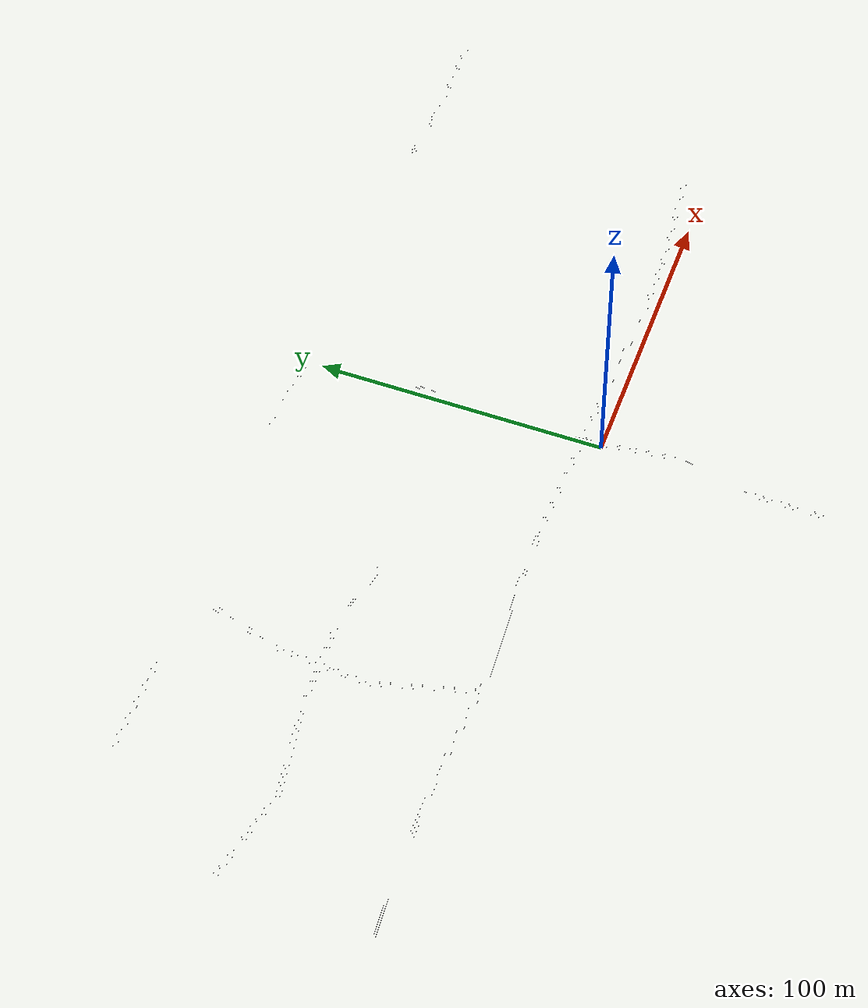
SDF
<?xml version="1.0"?>
<sdf version="1.9">
  <model name="aero_sense_power_lines">
    <static>true</static>
    <link name="link">
      <visual name="span_0_-0.8">
        <pose>-6.349 -66.424 8.640 0 1.57080 1.55957</pose>
        <cast_shadows>false</cast_shadows>
        <geometry><cylinder><radius>0.006</radius><length>29.654</length></cylinder></geometry>
        <material><ambient>0.08 0.08 0.09 1</ambient><diffuse>0.08 0.08 0.09 1</diffuse></material>
      </visual>
      <visual name="span_0_+0.0">
        <pose>-7.149 -66.415 9.100 0 1.57080 1.55957</pose>
        <cast_shadows>false</cast_shadows>
        <geometry><cylinder><radius>0.006</radius><length>29.654</length></cylinder></geometry>
        <material><ambient>0.08 0.08 0.09 1</ambient><diffuse>0.08 0.08 0.09 1</diffuse></material>
      </visual>
      <visual name="span_0_+0.8">
        <pose>-7.949 -66.406 8.640 0 1.57080 1.55957</pose>
        <cast_shadows>false</cast_shadows>
        <geometry><cylinder><radius>0.006</radius><length>29.654</length></cylinder></geometry>
        <material><ambient>0.08 0.08 0.09 1</ambient><diffuse>0.08 0.08 0.09 1</diffuse></material>
      </visual>
      <visual name="span_1_-0.8">
        <pose>-3.471 -38.891 8.640 0 1.57080 1.36176</pose>
        <cast_shadows>false</cast_shadows>
        <geometry><cylinder><radius>0.006</radius><length>26.300</length></cylinder></geometry>
        <material><ambient>0.08 0.08 0.09 1</ambient><diffuse>0.08 0.08 0.09 1</diffuse></material>
      </visual>
      <visual name="span_1_+0.0">
        <pose>-4.254 -38.725 9.100 0 1.57080 1.36176</pose>
        <cast_shadows>false</cast_shadows>
        <geometry><cylinder><radius>0.006</radius><length>26.300</length></cylinder></geometry>
        <material><ambient>0.08 0.08 0.09 1</ambient><diffuse>0.08 0.08 0.09 1</diffuse></material>
      </visual>
      <visual name="span_1_+0.8">
        <pose>-5.036 -38.559 8.640 0 1.57080 1.36176</pose>
        <cast_shadows>false</cast_shadows>
        <geometry><cylinder><radius>0.006</radius><length>26.300</length></cylinder></geometry>
        <material><ambient>0.08 0.08 0.09 1</ambient><diffuse>0.08 0.08 0.09 1</diffuse></material>
      </visual>
      <visual name="span_2_-0.8">
        <pose>-2.429 -11.336 8.640 0 1.57080 1.68797</pose>
        <cast_shadows>false</cast_shadows>
        <geometry><cylinder><radius>0.006</radius><length>29.063</length></cylinder></geometry>
        <material><ambient>0.08 0.08 0.09 1</ambient><diffuse>0.08 0.08 0.09 1</diffuse></material>
      </visual>
      <visual name="span_2_+0.0">
        <pose>-3.224 -11.429 9.100 0 1.57080 1.68797</pose>
        <cast_shadows>false</cast_shadows>
        <geometry><cylinder><radius>0.006</radius><length>29.063</length></cylinder></geometry>
        <material><ambient>0.08 0.08 0.09 1</ambient><diffuse>0.08 0.08 0.09 1</diffuse></material>
      </visual>
      <visual name="span_2_+0.8">
        <pose>-4.018 -11.523 8.640 0 1.57080 1.68797</pose>
        <cast_shadows>false</cast_shadows>
        <geometry><cylinder><radius>0.006</radius><length>29.063</length></cylinder></geometry>
        <material><ambient>0.08 0.08 0.09 1</ambient><diffuse>0.08 0.08 0.09 1</diffuse></material>
      </visual>
      <visual name="span_3_-0.8">
        <pose>-5.804 19.213 8.640 0 1.57080 1.67442</pose>
        <cast_shadows>false</cast_shadows>
        <geometry><cylinder><radius>0.006</radius><length>32.429</length></cylinder></geometry>
        <material><ambient>0.08 0.08 0.09 1</ambient><diffuse>0.08 0.08 0.09 1</diffuse></material>
      </visual>
      <visual name="span_3_+0.0">
        <pose>-6.600 19.130 9.100 0 1.57080 1.67442</pose>
        <cast_shadows>false</cast_shadows>
        <geometry><cylinder><radius>0.006</radius><length>32.429</length></cylinder></geometry>
        <material><ambient>0.08 0.08 0.09 1</ambient><diffuse>0.08 0.08 0.09 1</diffuse></material>
      </visual>
      <visual name="span_3_+0.8">
        <pose>-7.395 19.047 8.640 0 1.57080 1.67442</pose>
        <cast_shadows>false</cast_shadows>
        <geometry><cylinder><radius>0.006</radius><length>32.429</length></cylinder></geometry>
        <material><ambient>0.08 0.08 0.09 1</ambient><diffuse>0.08 0.08 0.09 1</diffuse></material>
      </visual>
      <visual name="span_4_-0.8">
        <pose>-3.960 52.745 8.640 0 1.57080 1.37322</pose>
        <cast_shadows>false</cast_shadows>
        <geometry><cylinder><radius>0.006</radius><length>35.989</length></cylinder></geometry>
        <material><ambient>0.08 0.08 0.09 1</ambient><diffuse>0.08 0.08 0.09 1</diffuse></material>
      </visual>
      <visual name="span_4_+0.0">
        <pose>-4.744 52.902 9.100 0 1.57080 1.37322</pose>
        <cast_shadows>false</cast_shadows>
        <geometry><cylinder><radius>0.006</radius><length>35.989</length></cylinder></geometry>
        <material><ambient>0.08 0.08 0.09 1</ambient><diffuse>0.08 0.08 0.09 1</diffuse></material>
      </visual>
      <visual name="span_4_+0.8">
        <pose>-5.529 53.059 8.640 0 1.57080 1.37322</pose>
        <cast_shadows>false</cast_shadows>
        <geometry><cylinder><radius>0.006</radius><length>35.989</length></cylinder></geometry>
        <material><ambient>0.08 0.08 0.09 1</ambient><diffuse>0.08 0.08 0.09 1</diffuse></material>
      </visual>
      <visual name="span_5_-0.8">
        <pose>-178.033 5.471 8.640 0 1.57080 0.06730</pose>
        <cast_shadows>false</cast_shadows>
        <geometry><cylinder><radius>0.006</radius><length>27.052</length></cylinder></geometry>
        <material><ambient>0.08 0.08 0.09 1</ambient><diffuse>0.08 0.08 0.09 1</diffuse></material>
      </visual>
      <visual name="span_5_+0.0">
        <pose>-178.087 6.269 9.100 0 1.57080 0.06730</pose>
        <cast_shadows>false</cast_shadows>
        <geometry><cylinder><radius>0.006</radius><length>27.052</length></cylinder></geometry>
        <material><ambient>0.08 0.08 0.09 1</ambient><diffuse>0.08 0.08 0.09 1</diffuse></material>
      </visual>
      <visual name="span_5_+0.8">
        <pose>-178.141 7.067 8.640 0 1.57080 0.06730</pose>
        <cast_shadows>false</cast_shadows>
        <geometry><cylinder><radius>0.006</radius><length>27.052</length></cylinder></geometry>
        <material><ambient>0.08 0.08 0.09 1</ambient><diffuse>0.08 0.08 0.09 1</diffuse></material>
      </visual>
      <visual name="span_6_-0.8">
        <pose>-149.505 6.240 8.640 0 1.57080 -0.00922</pose>
        <cast_shadows>false</cast_shadows>
        <geometry><cylinder><radius>0.006</radius><length>30.189</length></cylinder></geometry>
        <material><ambient>0.08 0.08 0.09 1</ambient><diffuse>0.08 0.08 0.09 1</diffuse></material>
      </visual>
      <visual name="span_6_+0.0">
        <pose>-149.498 7.040 9.100 0 1.57080 -0.00922</pose>
        <cast_shadows>false</cast_shadows>
        <geometry><cylinder><radius>0.006</radius><length>30.189</length></cylinder></geometry>
        <material><ambient>0.08 0.08 0.09 1</ambient><diffuse>0.08 0.08 0.09 1</diffuse></material>
      </visual>
      <visual name="span_6_+0.8">
        <pose>-149.490 7.839 8.640 0 1.57080 -0.00922</pose>
        <cast_shadows>false</cast_shadows>
        <geometry><cylinder><radius>0.006</radius><length>30.189</length></cylinder></geometry>
        <material><ambient>0.08 0.08 0.09 1</ambient><diffuse>0.08 0.08 0.09 1</diffuse></material>
      </visual>
      <visual name="span_7_-0.8">
        <pose>-117.237 4.760 8.640 0 1.57080 -0.07779</pose>
        <cast_shadows>false</cast_shadows>
        <geometry><cylinder><radius>0.006</radius><length>34.562</length></cylinder></geometry>
        <material><ambient>0.08 0.08 0.09 1</ambient><diffuse>0.08 0.08 0.09 1</diffuse></material>
      </visual>
      <visual name="span_7_+0.0">
        <pose>-117.175 5.557 9.100 0 1.57080 -0.07779</pose>
        <cast_shadows>false</cast_shadows>
        <geometry><cylinder><radius>0.006</radius><length>34.562</length></cylinder></geometry>
        <material><ambient>0.08 0.08 0.09 1</ambient><diffuse>0.08 0.08 0.09 1</diffuse></material>
      </visual>
      <visual name="span_7_+0.8">
        <pose>-117.113 6.355 8.640 0 1.57080 -0.07779</pose>
        <cast_shadows>false</cast_shadows>
        <geometry><cylinder><radius>0.006</radius><length>34.562</length></cylinder></geometry>
        <material><ambient>0.08 0.08 0.09 1</ambient><diffuse>0.08 0.08 0.09 1</diffuse></material>
      </visual>
      <visual name="span_8_-0.8">
        <pose>-84.462 4.369 8.640 0 1.57080 0.06167</pose>
        <cast_shadows>false</cast_shadows>
        <geometry><cylinder><radius>0.006</radius><length>30.929</length></cylinder></geometry>
        <material><ambient>0.08 0.08 0.09 1</ambient><diffuse>0.08 0.08 0.09 1</diffuse></material>
      </visual>
      <visual name="span_8_+0.0">
        <pose>-84.511 5.168 9.100 0 1.57080 0.06167</pose>
        <cast_shadows>false</cast_shadows>
        <geometry><cylinder><radius>0.006</radius><length>30.929</length></cylinder></geometry>
        <material><ambient>0.08 0.08 0.09 1</ambient><diffuse>0.08 0.08 0.09 1</diffuse></material>
      </visual>
      <visual name="span_8_+0.8">
        <pose>-84.560 5.966 8.640 0 1.57080 0.06167</pose>
        <cast_shadows>false</cast_shadows>
        <geometry><cylinder><radius>0.006</radius><length>30.929</length></cylinder></geometry>
        <material><ambient>0.08 0.08 0.09 1</ambient><diffuse>0.08 0.08 0.09 1</diffuse></material>
      </visual>
      <visual name="span_9_-0.8">
        <pose>-54.653 5.523 8.640 0 1.57080 0.01406</pose>
        <cast_shadows>false</cast_shadows>
        <geometry><cylinder><radius>0.006</radius><length>28.826</length></cylinder></geometry>
        <material><ambient>0.08 0.08 0.09 1</ambient><diffuse>0.08 0.08 0.09 1</diffuse></material>
      </visual>
      <visual name="span_9_+0.0">
        <pose>-54.665 6.323 9.100 0 1.57080 0.01406</pose>
        <cast_shadows>false</cast_shadows>
        <geometry><cylinder><radius>0.006</radius><length>28.826</length></cylinder></geometry>
        <material><ambient>0.08 0.08 0.09 1</ambient><diffuse>0.08 0.08 0.09 1</diffuse></material>
      </visual>
      <visual name="span_9_+0.8">
        <pose>-54.676 7.123 8.640 0 1.57080 0.01406</pose>
        <cast_shadows>false</cast_shadows>
        <geometry><cylinder><radius>0.006</radius><length>28.826</length></cylinder></geometry>
        <material><ambient>0.08 0.08 0.09 1</ambient><diffuse>0.08 0.08 0.09 1</diffuse></material>
      </visual>
      <visual name="span_10_-0.8">
        <pose>-26.756 5.146 8.640 0 1.57080 -0.04291</pose>
        <cast_shadows>false</cast_shadows>
        <geometry><cylinder><radius>0.006</radius><length>27.089</length></cylinder></geometry>
        <material><ambient>0.08 0.08 0.09 1</ambient><diffuse>0.08 0.08 0.09 1</diffuse></material>
      </visual>
      <visual name="span_10_+0.0">
        <pose>-26.721 5.945 9.100 0 1.57080 -0.04291</pose>
        <cast_shadows>false</cast_shadows>
        <geometry><cylinder><radius>0.006</radius><length>27.089</length></cylinder></geometry>
        <material><ambient>0.08 0.08 0.09 1</ambient><diffuse>0.08 0.08 0.09 1</diffuse></material>
      </visual>
      <visual name="span_10_+0.8">
        <pose>-26.687 6.744 8.640 0 1.57080 -0.04291</pose>
        <cast_shadows>false</cast_shadows>
        <geometry><cylinder><radius>0.006</radius><length>27.089</length></cylinder></geometry>
        <material><ambient>0.08 0.08 0.09 1</ambient><diffuse>0.08 0.08 0.09 1</diffuse></material>
      </visual>
      <visual name="span_11_-0.8">
        <pose>2.044 3.943 8.640 0 1.57080 -0.04069</pose>
        <cast_shadows>false</cast_shadows>
        <geometry><cylinder><radius>0.006</radius><length>30.558</length></cylinder></geometry>
        <material><ambient>0.08 0.08 0.09 1</ambient><diffuse>0.08 0.08 0.09 1</diffuse></material>
      </visual>
      <visual name="span_11_+0.0">
        <pose>2.077 4.742 9.100 0 1.57080 -0.04069</pose>
        <cast_shadows>false</cast_shadows>
        <geometry><cylinder><radius>0.006</radius><length>30.558</length></cylinder></geometry>
        <material><ambient>0.08 0.08 0.09 1</ambient><diffuse>0.08 0.08 0.09 1</diffuse></material>
      </visual>
      <visual name="span_11_+0.8">
        <pose>2.109 5.542 8.640 0 1.57080 -0.04069</pose>
        <cast_shadows>false</cast_shadows>
        <geometry><cylinder><radius>0.006</radius><length>30.558</length></cylinder></geometry>
        <material><ambient>0.08 0.08 0.09 1</ambient><diffuse>0.08 0.08 0.09 1</diffuse></material>
      </visual>
      <visual name="span_12_-0.8">
        <pose>34.699 2.375 8.640 0 1.57080 -0.05439</pose>
        <cast_shadows>false</cast_shadows>
        <geometry><cylinder><radius>0.006</radius><length>34.850</length></cylinder></geometry>
        <material><ambient>0.08 0.08 0.09 1</ambient><diffuse>0.08 0.08 0.09 1</diffuse></material>
      </visual>
      <visual name="span_12_+0.0">
        <pose>34.742 3.174 9.100 0 1.57080 -0.05439</pose>
        <cast_shadows>false</cast_shadows>
        <geometry><cylinder><radius>0.006</radius><length>34.850</length></cylinder></geometry>
        <material><ambient>0.08 0.08 0.09 1</ambient><diffuse>0.08 0.08 0.09 1</diffuse></material>
      </visual>
      <visual name="span_12_+0.8">
        <pose>34.786 3.973 8.640 0 1.57080 -0.05439</pose>
        <cast_shadows>false</cast_shadows>
        <geometry><cylinder><radius>0.006</radius><length>34.850</length></cylinder></geometry>
        <material><ambient>0.08 0.08 0.09 1</ambient><diffuse>0.08 0.08 0.09 1</diffuse></material>
      </visual>
      <visual name="span_13_-0.8">
        <pose>65.654 1.815 8.653 0 1.56986 0.02874</pose>
        <cast_shadows>false</cast_shadows>
        <geometry><cylinder><radius>0.006</radius><length>26.989</length></cylinder></geometry>
        <material><ambient>0.08 0.08 0.09 1</ambient><diffuse>0.08 0.08 0.09 1</diffuse></material>
      </visual>
      <visual name="span_13_+0.0">
        <pose>65.631 2.614 9.113 0 1.56986 0.02874</pose>
        <cast_shadows>false</cast_shadows>
        <geometry><cylinder><radius>0.006</radius><length>26.989</length></cylinder></geometry>
        <material><ambient>0.08 0.08 0.09 1</ambient><diffuse>0.08 0.08 0.09 1</diffuse></material>
      </visual>
      <visual name="span_13_+0.8">
        <pose>65.608 3.414 8.653 0 1.56986 0.02874</pose>
        <cast_shadows>false</cast_shadows>
        <geometry><cylinder><radius>0.006</radius><length>26.989</length></cylinder></geometry>
        <material><ambient>0.08 0.08 0.09 1</ambient><diffuse>0.08 0.08 0.09 1</diffuse></material>
      </visual>
      <visual name="span_14_-0.8">
        <pose>96.064 3.884 8.835 0 1.56081 0.09915</pose>
        <cast_shadows>false</cast_shadows>
        <geometry><cylinder><radius>0.006</radius><length>33.898</length></cylinder></geometry>
        <material><ambient>0.08 0.08 0.09 1</ambient><diffuse>0.08 0.08 0.09 1</diffuse></material>
      </visual>
      <visual name="span_14_+0.0">
        <pose>95.985 4.680 9.295 0 1.56081 0.09915</pose>
        <cast_shadows>false</cast_shadows>
        <geometry><cylinder><radius>0.006</radius><length>33.898</length></cylinder></geometry>
        <material><ambient>0.08 0.08 0.09 1</ambient><diffuse>0.08 0.08 0.09 1</diffuse></material>
      </visual>
      <visual name="span_14_+0.8">
        <pose>95.906 5.476 8.835 0 1.56081 0.09915</pose>
        <cast_shadows>false</cast_shadows>
        <geometry><cylinder><radius>0.006</radius><length>33.898</length></cylinder></geometry>
        <material><ambient>0.08 0.08 0.09 1</ambient><diffuse>0.08 0.08 0.09 1</diffuse></material>
      </visual>
      <visual name="span_15_-0.8">
        <pose>-145.088 101.486 8.640 0 1.57080 -0.01320</pose>
        <cast_shadows>false</cast_shadows>
        <geometry><cylinder><radius>0.006</radius><length>31.713</length></cylinder></geometry>
        <material><ambient>0.08 0.08 0.09 1</ambient><diffuse>0.08 0.08 0.09 1</diffuse></material>
      </visual>
      <visual name="span_15_+0.0">
        <pose>-145.077 102.286 9.100 0 1.57080 -0.01320</pose>
        <cast_shadows>false</cast_shadows>
        <geometry><cylinder><radius>0.006</radius><length>31.713</length></cylinder></geometry>
        <material><ambient>0.08 0.08 0.09 1</ambient><diffuse>0.08 0.08 0.09 1</diffuse></material>
      </visual>
      <visual name="span_15_+0.8">
        <pose>-145.067 103.086 8.640 0 1.57080 -0.01320</pose>
        <cast_shadows>false</cast_shadows>
        <geometry><cylinder><radius>0.006</radius><length>31.713</length></cylinder></geometry>
        <material><ambient>0.08 0.08 0.09 1</ambient><diffuse>0.08 0.08 0.09 1</diffuse></material>
      </visual>
      <visual name="span_16_-0.8">
        <pose>-20.067 102.645 8.640 0 1.57080 -0.02805</pose>
        <cast_shadows>false</cast_shadows>
        <geometry><cylinder><radius>0.006</radius><length>28.462</length></cylinder></geometry>
        <material><ambient>0.08 0.08 0.09 1</ambient><diffuse>0.08 0.08 0.09 1</diffuse></material>
      </visual>
      <visual name="span_16_+0.0">
        <pose>-20.045 103.445 9.100 0 1.57080 -0.02805</pose>
        <cast_shadows>false</cast_shadows>
        <geometry><cylinder><radius>0.006</radius><length>28.462</length></cylinder></geometry>
        <material><ambient>0.08 0.08 0.09 1</ambient><diffuse>0.08 0.08 0.09 1</diffuse></material>
      </visual>
      <visual name="span_16_+0.8">
        <pose>-20.022 104.244 8.640 0 1.57080 -0.02805</pose>
        <cast_shadows>false</cast_shadows>
        <geometry><cylinder><radius>0.006</radius><length>28.462</length></cylinder></geometry>
        <material><ambient>0.08 0.08 0.09 1</ambient><diffuse>0.08 0.08 0.09 1</diffuse></material>
      </visual>
      <visual name="span_17_-0.8">
        <pose>101.201 101.658 8.640 0 1.57080 -0.05690</pose>
        <cast_shadows>false</cast_shadows>
        <geometry><cylinder><radius>0.006</radius><length>31.562</length></cylinder></geometry>
        <material><ambient>0.08 0.08 0.09 1</ambient><diffuse>0.08 0.08 0.09 1</diffuse></material>
      </visual>
      <visual name="span_17_+0.0">
        <pose>101.247 102.457 9.100 0 1.57080 -0.05690</pose>
        <cast_shadows>false</cast_shadows>
        <geometry><cylinder><radius>0.006</radius><length>31.562</length></cylinder></geometry>
        <material><ambient>0.08 0.08 0.09 1</ambient><diffuse>0.08 0.08 0.09 1</diffuse></material>
      </visual>
      <visual name="span_17_+0.8">
        <pose>101.292 103.255 8.640 0 1.57080 -0.05690</pose>
        <cast_shadows>false</cast_shadows>
        <geometry><cylinder><radius>0.006</radius><length>31.562</length></cylinder></geometry>
        <material><ambient>0.08 0.08 0.09 1</ambient><diffuse>0.08 0.08 0.09 1</diffuse></material>
      </visual>
      <visual name="span_18_-0.8">
        <pose>133.314 101.263 8.640 0 1.57080 0.03088</pose>
        <cast_shadows>false</cast_shadows>
        <geometry><cylinder><radius>0.006</radius><length>32.590</length></cylinder></geometry>
        <material><ambient>0.08 0.08 0.09 1</ambient><diffuse>0.08 0.08 0.09 1</diffuse></material>
      </visual>
      <visual name="span_18_+0.0">
        <pose>133.290 102.062 9.100 0 1.57080 0.03088</pose>
        <cast_shadows>false</cast_shadows>
        <geometry><cylinder><radius>0.006</radius><length>32.590</length></cylinder></geometry>
        <material><ambient>0.08 0.08 0.09 1</ambient><diffuse>0.08 0.08 0.09 1</diffuse></material>
      </visual>
      <visual name="span_18_+0.8">
        <pose>133.265 102.862 8.640 0 1.57080 0.03088</pose>
        <cast_shadows>false</cast_shadows>
        <geometry><cylinder><radius>0.006</radius><length>32.590</length></cylinder></geometry>
        <material><ambient>0.08 0.08 0.09 1</ambient><diffuse>0.08 0.08 0.09 1</diffuse></material>
      </visual>
      <visual name="span_19_-0.8">
        <pose>-174.666 52.374 8.640 0 1.57080 -0.23424</pose>
        <cast_shadows>false</cast_shadows>
        <geometry><cylinder><radius>0.006</radius><length>33.023</length></cylinder></geometry>
        <material><ambient>0.08 0.08 0.09 1</ambient><diffuse>0.08 0.08 0.09 1</diffuse></material>
      </visual>
      <visual name="span_19_+0.0">
        <pose>-174.480 53.152 9.100 0 1.57080 -0.23424</pose>
        <cast_shadows>false</cast_shadows>
        <geometry><cylinder><radius>0.006</radius><length>33.023</length></cylinder></geometry>
        <material><ambient>0.08 0.08 0.09 1</ambient><diffuse>0.08 0.08 0.09 1</diffuse></material>
      </visual>
      <visual name="span_19_+0.8">
        <pose>-174.295 53.930 8.640 0 1.57080 -0.23424</pose>
        <cast_shadows>false</cast_shadows>
        <geometry><cylinder><radius>0.006</radius><length>33.023</length></cylinder></geometry>
        <material><ambient>0.08 0.08 0.09 1</ambient><diffuse>0.08 0.08 0.09 1</diffuse></material>
      </visual>
      <visual name="span_20_-0.8">
        <pose>-143.117 50.855 8.640 0 1.57080 0.15204</pose>
        <cast_shadows>false</cast_shadows>
        <geometry><cylinder><radius>0.006</radius><length>30.716</length></cylinder></geometry>
        <material><ambient>0.08 0.08 0.09 1</ambient><diffuse>0.08 0.08 0.09 1</diffuse></material>
      </visual>
      <visual name="span_20_+0.0">
        <pose>-143.238 51.645 9.100 0 1.57080 0.15204</pose>
        <cast_shadows>false</cast_shadows>
        <geometry><cylinder><radius>0.006</radius><length>30.716</length></cylinder></geometry>
        <material><ambient>0.08 0.08 0.09 1</ambient><diffuse>0.08 0.08 0.09 1</diffuse></material>
      </visual>
      <visual name="span_20_+0.8">
        <pose>-143.360 52.436 8.640 0 1.57080 0.15204</pose>
        <cast_shadows>false</cast_shadows>
        <geometry><cylinder><radius>0.006</radius><length>30.716</length></cylinder></geometry>
        <material><ambient>0.08 0.08 0.09 1</ambient><diffuse>0.08 0.08 0.09 1</diffuse></material>
      </visual>
      <visual name="span_21_-0.8">
        <pose>-113.241 53.649 8.640 0 1.57080 0.03228</pose>
        <cast_shadows>false</cast_shadows>
        <geometry><cylinder><radius>0.006</radius><length>29.597</length></cylinder></geometry>
        <material><ambient>0.08 0.08 0.09 1</ambient><diffuse>0.08 0.08 0.09 1</diffuse></material>
      </visual>
      <visual name="span_21_+0.0">
        <pose>-113.267 54.449 9.100 0 1.57080 0.03228</pose>
        <cast_shadows>false</cast_shadows>
        <geometry><cylinder><radius>0.006</radius><length>29.597</length></cylinder></geometry>
        <material><ambient>0.08 0.08 0.09 1</ambient><diffuse>0.08 0.08 0.09 1</diffuse></material>
      </visual>
      <visual name="span_21_+0.8">
        <pose>-113.293 55.249 8.640 0 1.57080 0.03228</pose>
        <cast_shadows>false</cast_shadows>
        <geometry><cylinder><radius>0.006</radius><length>29.597</length></cylinder></geometry>
        <material><ambient>0.08 0.08 0.09 1</ambient><diffuse>0.08 0.08 0.09 1</diffuse></material>
      </visual>
      <visual name="span_22_-0.8">
        <pose>-85.915 51.508 8.640 0 1.57080 -0.20424</pose>
        <cast_shadows>false</cast_shadows>
        <geometry><cylinder><radius>0.006</radius><length>25.987</length></cylinder></geometry>
        <material><ambient>0.08 0.08 0.09 1</ambient><diffuse>0.08 0.08 0.09 1</diffuse></material>
      </visual>
      <visual name="span_22_+0.0">
        <pose>-85.753 52.291 9.100 0 1.57080 -0.20424</pose>
        <cast_shadows>false</cast_shadows>
        <geometry><cylinder><radius>0.006</radius><length>25.987</length></cylinder></geometry>
        <material><ambient>0.08 0.08 0.09 1</ambient><diffuse>0.08 0.08 0.09 1</diffuse></material>
      </visual>
      <visual name="span_22_+0.8">
        <pose>-85.590 53.074 8.640 0 1.57080 -0.20424</pose>
        <cast_shadows>false</cast_shadows>
        <geometry><cylinder><radius>0.006</radius><length>25.987</length></cylinder></geometry>
        <material><ambient>0.08 0.08 0.09 1</ambient><diffuse>0.08 0.08 0.09 1</diffuse></material>
      </visual>
      <visual name="span_23_-0.8">
        <pose>-109.015 21.618 8.640 0 1.57080 1.83393</pose>
        <cast_shadows>false</cast_shadows>
        <geometry><cylinder><radius>0.006</radius><length>34.868</length></cylinder></geometry>
        <material><ambient>0.08 0.08 0.09 1</ambient><diffuse>0.08 0.08 0.09 1</diffuse></material>
      </visual>
      <visual name="span_23_+0.0">
        <pose>-109.787 21.410 9.100 0 1.57080 1.83393</pose>
        <cast_shadows>false</cast_shadows>
        <geometry><cylinder><radius>0.006</radius><length>34.868</length></cylinder></geometry>
        <material><ambient>0.08 0.08 0.09 1</ambient><diffuse>0.08 0.08 0.09 1</diffuse></material>
      </visual>
      <visual name="span_23_+0.8">
        <pose>-110.560 21.202 8.640 0 1.57080 1.83393</pose>
        <cast_shadows>false</cast_shadows>
        <geometry><cylinder><radius>0.006</radius><length>34.868</length></cylinder></geometry>
        <material><ambient>0.08 0.08 0.09 1</ambient><diffuse>0.08 0.08 0.09 1</diffuse></material>
      </visual>
      <visual name="span_24_-0.8">
        <pose>-112.447 53.887 8.640 0 1.57080 1.50233</pose>
        <cast_shadows>false</cast_shadows>
        <geometry><cylinder><radius>0.006</radius><length>31.470</length></cylinder></geometry>
        <material><ambient>0.08 0.08 0.09 1</ambient><diffuse>0.08 0.08 0.09 1</diffuse></material>
      </visual>
      <visual name="span_24_+0.0">
        <pose>-113.245 53.942 9.100 0 1.57080 1.50233</pose>
        <cast_shadows>false</cast_shadows>
        <geometry><cylinder><radius>0.006</radius><length>31.470</length></cylinder></geometry>
        <material><ambient>0.08 0.08 0.09 1</ambient><diffuse>0.08 0.08 0.09 1</diffuse></material>
      </visual>
      <visual name="span_24_+0.8">
        <pose>-114.044 53.997 8.640 0 1.57080 1.50233</pose>
        <cast_shadows>false</cast_shadows>
        <geometry><cylinder><radius>0.006</radius><length>31.470</length></cylinder></geometry>
        <material><ambient>0.08 0.08 0.09 1</ambient><diffuse>0.08 0.08 0.09 1</diffuse></material>
      </visual>
      <visual name="span_25_-0.8">
        <pose>-107.208 83.729 8.640 0 1.57080 1.28582</pose>
        <cast_shadows>false</cast_shadows>
        <geometry><cylinder><radius>0.006</radius><length>29.830</length></cylinder></geometry>
        <material><ambient>0.08 0.08 0.09 1</ambient><diffuse>0.08 0.08 0.09 1</diffuse></material>
      </visual>
      <visual name="span_25_+0.0">
        <pose>-107.976 83.954 9.100 0 1.57080 1.28582</pose>
        <cast_shadows>false</cast_shadows>
        <geometry><cylinder><radius>0.006</radius><length>29.830</length></cylinder></geometry>
        <material><ambient>0.08 0.08 0.09 1</ambient><diffuse>0.08 0.08 0.09 1</diffuse></material>
      </visual>
      <visual name="span_25_+0.8">
        <pose>-108.743 84.178 8.640 0 1.57080 1.28582</pose>
        <cast_shadows>false</cast_shadows>
        <geometry><cylinder><radius>0.006</radius><length>29.830</length></cylinder></geometry>
        <material><ambient>0.08 0.08 0.09 1</ambient><diffuse>0.08 0.08 0.09 1</diffuse></material>
      </visual>
    </link>
  </model>
</sdf>
